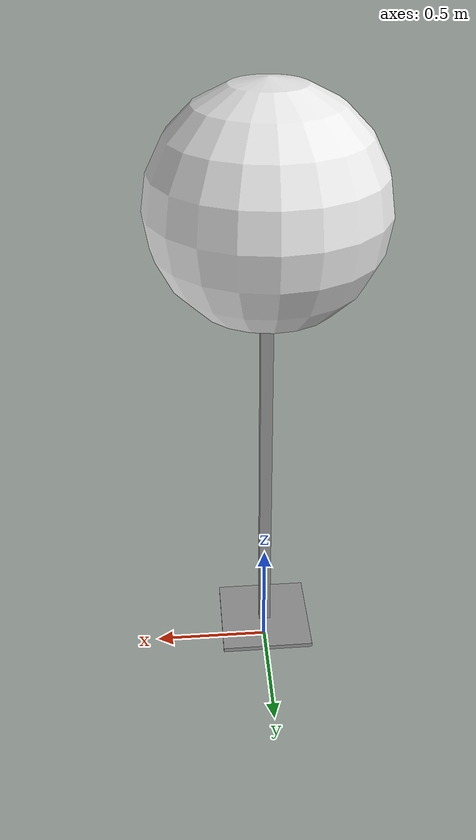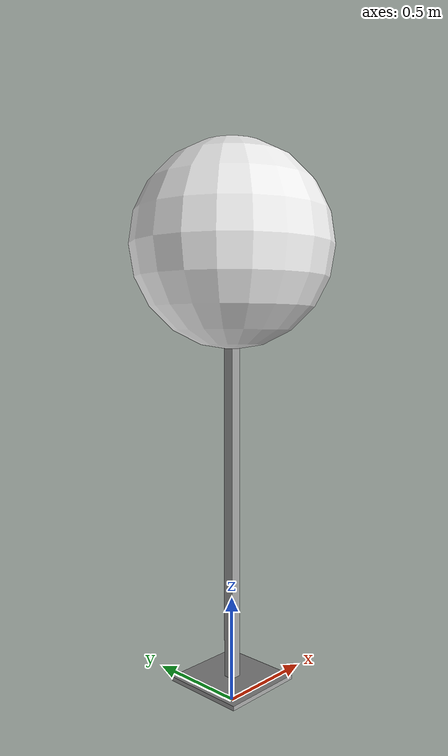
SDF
<?xml version="1.0" ?>
<sdf version="1.5">
  <model name="mbzirc_balloon">
    <link name="link">
	<pose frame=''>0.0 0 0.1 0 0.0 0</pose>
      <inertial>
        <mass>0.001</mass>
        <inertia>
          <ixx>0.000001</ixx>
          <ixy>0</ixy>
          <ixz>0</ixz>
          <iyy>0.000001</iyy>
          <iyz>0</iyz>
          <izz>0.00977</izz>
        </inertia>
      </inertial>
      <collision name="collision">
        <pose>0 0 2.0 0 0 0</pose>
        <geometry>
          <sphere>
            <radius>0.45</radius>
          </sphere>
        </geometry>
      </collision>
      <visual name="visual">
        <pose>0 0 2.0 0 0 0</pose>
        <geometry>
          <sphere>
            <radius>0.45</radius>
          </sphere>
        </geometry>
        <material>
          <script>
            <name>Gazebo/White</name>
            <uri>file://media/materials/scripts/gazebo.material</uri>
          </script>
        </material>
      </visual>
      <collision name="collision_bar">
        <pose>0 0 1.0 0 0 0</pose>
        <geometry>
          <box>
            <size>0.05 0.05 2.0</size>
          </box>
        </geometry>
      </collision>
      <visual name="visual_bar">
        <pose>0 0 1.0 0 0 0</pose>
        <geometry>
          <box>
            <size>0.05 0.05 2.0</size>
          </box>
        </geometry>
        <material>
          <script>
            <name>Gazebo/Grey</name>
            <uri>file://media/materials/scripts/gazebo.material</uri>
          </script>
        </material>
      </visual>
      <collision name="collision_base">
        <pose>0 0 0.01 0 0 0</pose>
        <geometry>
          <box>
            <size>0.4 0.4 0.02</size>
          </box>
        </geometry>
      </collision>
      <visual name="visual_base">
        <pose>0 0 0.01 0 0 0</pose>
        <geometry>
          <box>
            <size>0.4 0.4 0.02</size>
          </box>
        </geometry>
        <material>
          <script>
            <name>Gazebo/Grey</name>
            <uri>file://media/materials/scripts/gazebo.material</uri>
          </script>
        </material>
      </visual>
    </link>
  </model>
</sdf>
